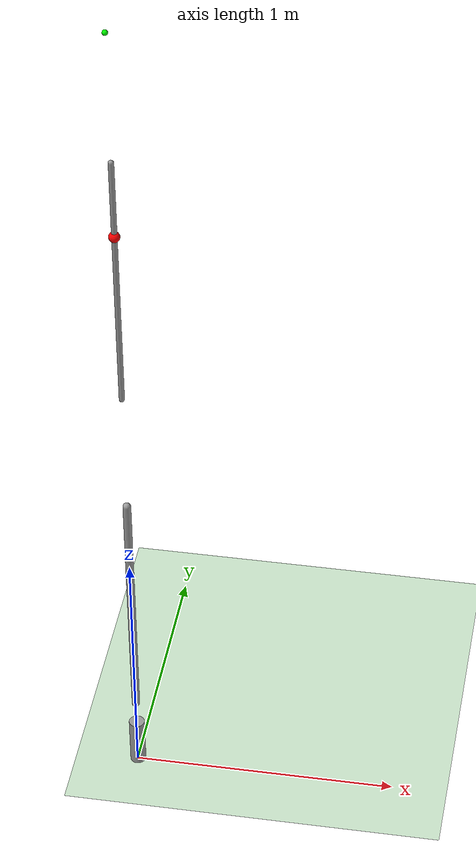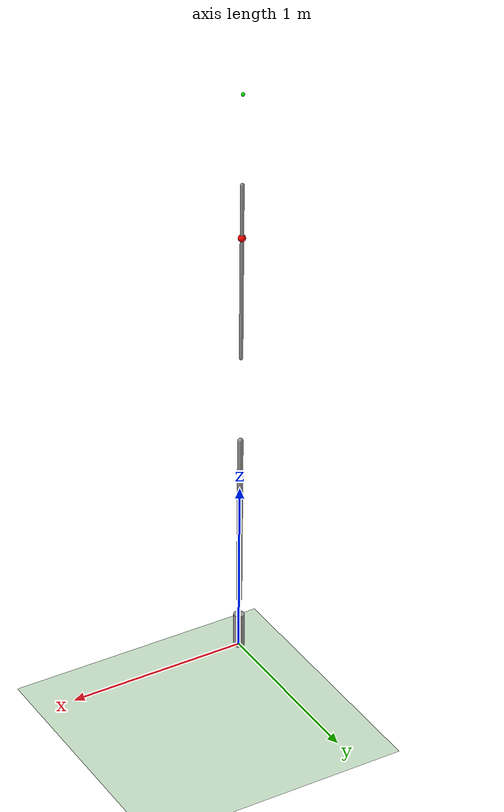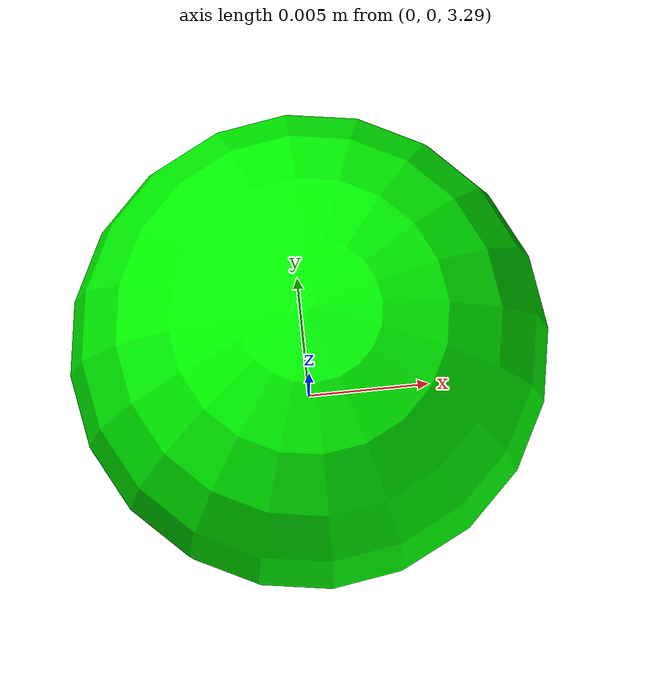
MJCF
<?xml version="1.0" encoding="UTF-8"?>
<mujoco model="sundog_allthread">
    <compiler angle="radian" coordinate="local"/>
    <option gravity="0 0 -9.81" integrator="RK4" timestep="0.01"/>

    <default>
        <geom rgba="0.6 0.6 0.6 1" friction="1 0.5 0.001"/>
    </default>

    <worldbody>
        <!-- Ground -->
        <geom name="floor" type="plane" pos="0 0 0" size="5 5 0.1" rgba="0.8 0.9 0.8 1"/>

        <!-- Ceiling with target -->
        <geom name="ceiling" type="plane" pos="0 0 2.5" size="5 5 0.1" rgba="0.8 0.8 1 1" euler="0 0 3.1416"/>
        <site name="laser_dot" pos="0 0 2.5" size="0.02" rgba="1 0 0 1"/>

        <!-- Telescoping pole representing a conduit or rod -->
        <body name="base" pos="0 0 0.1">
            <geom type="cylinder" size="0.03 0.1"/>
            <joint name="base_rotate" type="hinge" axis="0 0 1"/>
            <body name="segment1" pos="0 0 0.2">
                <geom type="capsule" size="0.015 0.75" fromto="0 0 0 0 0 1"/>
                <joint name="pitch1" type="hinge" axis="1 0 0"/>
                <body name="segment2" pos="0 0 1.5">
                    <geom type="capsule" size="0.01 0.75" fromto="0 0 0 0 0 1"/>
                    <joint name="pitch2" type="hinge" axis="1 0 0"/>
                    <site name="tip" pos="0 0 1.5" size="0.01" rgba="0 1 0 1"/>
                </body>
            </body>
        </body>
    </worldbody>

    <actuator>
        <motor joint="base_rotate" ctrlrange="-1 1"/>
        <motor joint="pitch1" ctrlrange="-1 1"/>
        <motor joint="pitch2" ctrlrange="-1 1"/>
    </actuator>
</mujoco>
